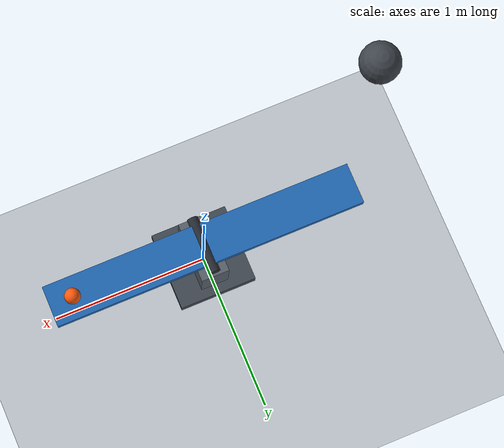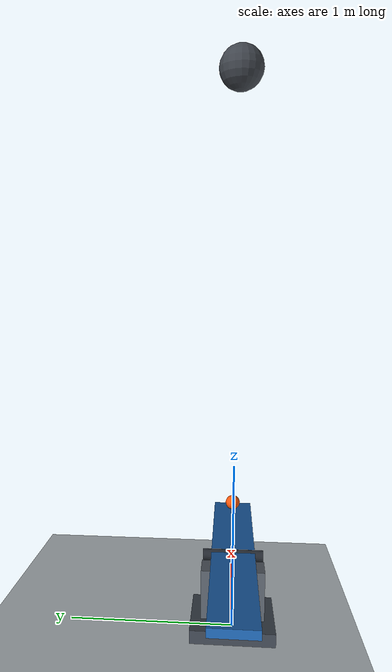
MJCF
<mujoco model="drop_weight_seesaw">
  <compiler angle="degree" inertiafromgeom="true"/>
  <option timestep="0.002" gravity="0 0 -9.81" integrator="implicit" solver="Newton" cone="elliptic" iterations="100" tolerance="1e-10"/>

  <visual>
    <global azimuth="135" elevation="-20"/>
  </visual>

  <worldbody>
    <light name="overhead" pos="0 -2 5" dir="0 0 -1"/>
    <camera name="overview" pos="3 -6 3" xyaxes="0.894427 0.447214 0 -0.182574 0.365148 0.912871"/>

    <geom name="floor" type="plane" pos="0 0 0" size="5 5 0.1" rgba="0.75 0.78 0.80 1" friction="0.8 0.005 0.0001" solref="0.004 1" solimp="0.99 0.999 0.001"/>

    <body name="pedestal" pos="0 0 0">
      <geom name="pedestal_base" type="box" pos="0 0 0.04" size="0.25 0.25 0.04" rgba="0.25 0.28 0.32 1"/>
      <geom name="pedestal_column" type="box" pos="0 0 0.23" size="0.09 0.19 0.15" rgba="0.35 0.38 0.42 1"/>
      <geom name="pivot_axle" type="cylinder" pos="0 0 0.45" quat="0.7071067812 0.7071067812 0 0" size="0.035 0.18" contype="0" conaffinity="0" rgba="0.15 0.17 0.20 1"/>
    </body>

    <!-- The upper hinge stop supports the resting ball before impact.
         Negative hinge rotation lowers the weight end and raises the ball end. -->
    <body name="seesaw" pos="0 0 0.45">
      <joint name="seesaw_hinge" type="hinge" axis="0 1 0" limited="true" range="-22 0" damping="0.005" solreflimit="0.004 1" solimplimit="0.99 0.999 0.001"/>
      <geom name="seesaw_plank" type="box" size="1 0.13 0.025" mass="0.25" rgba="0.12 0.40 0.70 1" friction="0.8 0.005 0.0001" solref="0.004 1" solimp="0.99 0.999 0.001"/>
    </body>

    <body name="weight" pos="-0.85 0 3">
      <freejoint name="weight_free"/>
      <geom name="weight_sphere" type="sphere" size="0.1" mass="1" rgba="0.25 0.27 0.30 1" friction="0.8 0.005 0.0001" solref="0.004 1" solimp="0.99 0.999 0.001"/>
    </body>

    <body name="ball" pos="0.85 0 0.525">
      <freejoint name="ball_free"/>
      <geom name="ball" type="sphere" size="0.05" mass="0.1" rgba="1 0.35 0.05 1" friction="0.8 0.005 0.0001" solref="0.004 1" solimp="0.99 0.999 0.001"/>
    </body>
  </worldbody>

  <keyframe>
    <key name="start" qpos="0 -0.85 0 3 1 0 0 0 0.85 0 0.525 1 0 0 0"/>
  </keyframe>
</mujoco>
